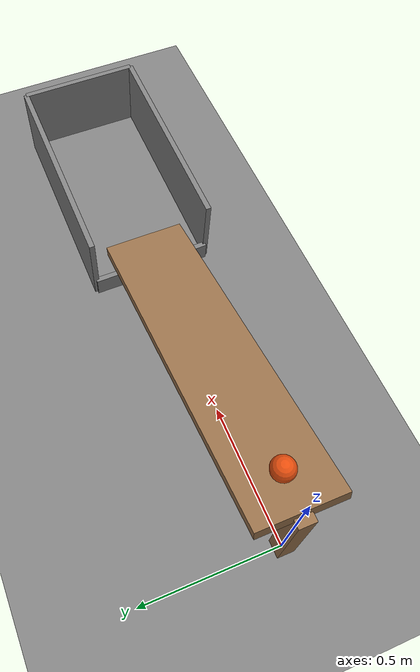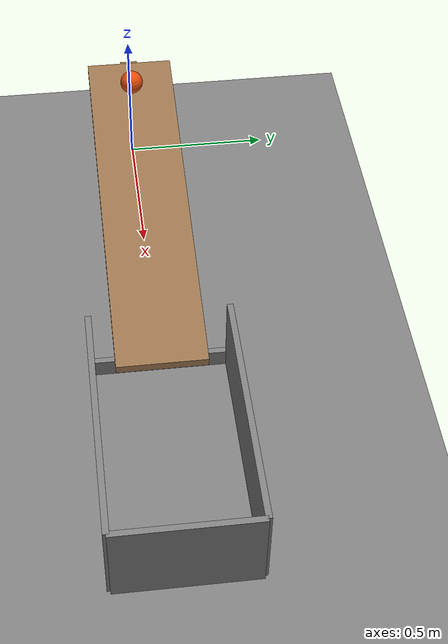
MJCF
<mujoco model="ball_rolls_into_a_cup">
  <compiler angle="radian"/>
  <option timestep="0.002"/>
  <worldbody>
    <geom name="floor" type="plane" size="6 6 0.1" friction="0.8 0.01 0.005"/>
    <body name="ramp start">
    </body>
    <body name="ramp finish">
    </body>
    <body name="ramp">
      <geom name="ramp" type="box" pos="0.6 0 0.26" size="0.616117 0.15 0.02" euler="0 0.229232 0" friction="0.8 0.005 0.002" solref="0.01 1" rgba="0.6 0.45 0.3 1"/>
    </body>
    <body name="support">
      <geom name="support" type="box" pos="0 0 0.2" size="0.03 0.03 0.2" rgba="0.6 0.45 0.3 1"/>
    </body>
    <body name="cup">
      <geom name="cup_base" type="box" pos="1.52 0 0.01" size="0.4 0.225 0.01"/>
      <geom name="cup_near_wall" type="box" pos="1.12 0 0.04" size="0.01 0.225 0.04"/>
      <geom name="cup_far_wall" type="box" pos="1.92 0 0.15" size="0.01 0.225 0.15"/>
      <geom name="cup_left_wall" type="box" pos="1.52 0.225 0.15" size="0.4 0.01 0.15"/>
      <geom name="cup_right_wall" type="box" pos="1.52 -0.225 0.15" size="0.4 0.01 0.15"/>
    </body>
    <body name="ball" pos="0.130495 0 0.431163">
      <freejoint/>
      <geom name="ball" type="sphere" pos="0 0 0" size="0.04" mass="0.15" condim="6" friction="0.8 0.005 0.002" solref="0.01 1" rgba="0.9 0.3 0.05 1"/>
    </body>
  </worldbody>
  <keyframe>
    <key name="start" qpos="0.130495 0 0.431163 1 0 0 0" qvel="0 0 0 0 0 0"/>
  </keyframe>
</mujoco>
